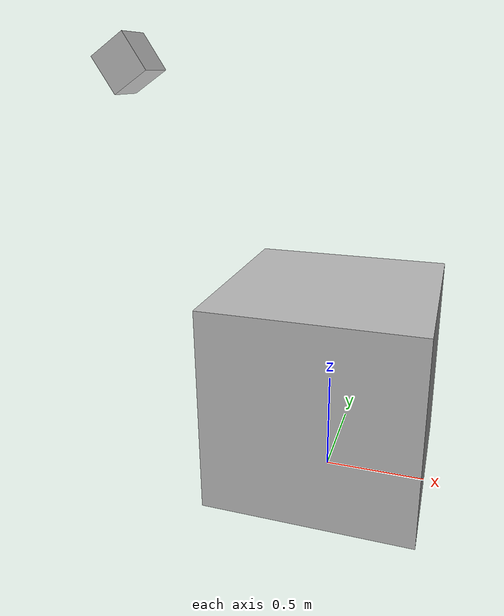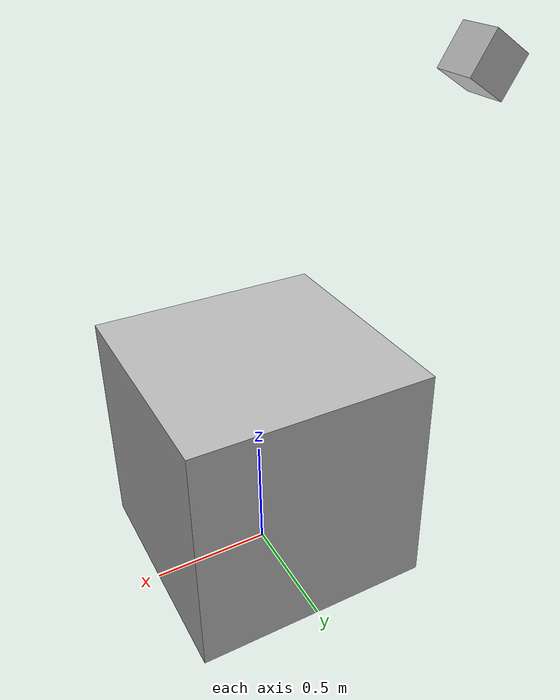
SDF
<!-- How to use camera and publish image to a ros topic.-->
<?xml version="1.0"?>
<sdf version='1.6'>
  <world name='default'>
    <model name='unit_box'>
			<static>true</static>
      <pose>0 0 0.5 0 -0 0</pose>
      <link name='link'>
        <visual name='visual'>
          <geometry>
            <box>
              <size>1 1 1</size>
            </box>
          </geometry>
        </visual>
      </link>
    </model>
    <light name='user_directional_light_0' type='directional'>
      <pose>0 0 1 0 0 0</pose>
    </light>
    <model name='camera'>
      <static>true</static>
      <pose>-1 0 2 0 1 0</pose>
      <link name='link'>
        <visual name='visual'>
          <geometry>
            <box>
              <size>0.2 0.2 0.2</size>
            </box>
          </geometry>
        </visual>
    <sensor type="multicamera" name="stereo_camera">
      <update_rate>30.0</update_rate>
      <camera name="left">
        <horizontal_fov>1.3962634</horizontal_fov>
        <image>
          <width>400</width>
          <height>300</height>
          <format>R8G8B8</format>
        </image>
        <clip>
          <near>0.02</near>
          <far>300</far>
        </clip>
        <noise>
          <type>gaussian</type>
          <mean>0.0</mean>
          <stddev>0.007</stddev>
        </noise>
      </camera>
      <camera name="right">
        <pose>0 -0.07 0 0 0 0</pose>
        <horizontal_fov>1.3962634</horizontal_fov>
        <image>
          <width>400</width>
          <height>300</height>
          <format>R8G8B8</format>
        </image>
        <clip>
          <near>0.02</near>
          <far>300</far>
        </clip>
        <noise>
          <type>gaussian</type>
          <mean>0.0</mean>
          <stddev>0.007</stddev>
        </noise>
      </camera>
      <plugin name="stereo_camera_controller" filename="libgazebo_ros_multicamera.so">
        <alwaysOn>true</alwaysOn>
        <updateRate>0.0</updateRate>
        <cameraName>stereo/camera</cameraName>
        <imageTopicName>image_raw</imageTopicName>
        <cameraInfoTopicName>camera_info</cameraInfoTopicName>
        <frameName>left_camera_optical_frame</frameName>
        <hackBaseline>0.07</hackBaseline>
        <distortionK1>0.0</distortionK1>
        <distortionK2>0.0</distortionK2>
        <distortionK3>0.0</distortionK3>
        <distortionT1>0.0</distortionT1>
        <distortionT2>0.0</distortionT2>
      </plugin>
    </sensor>
      </link>
    </model>
  </world>
</sdf>
